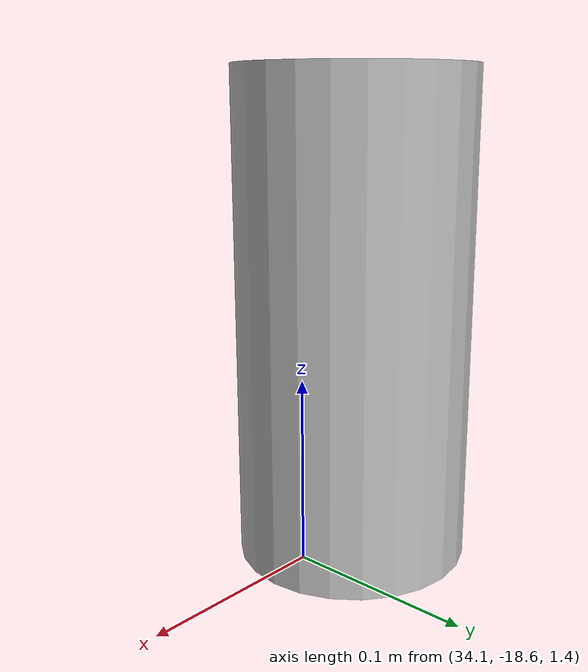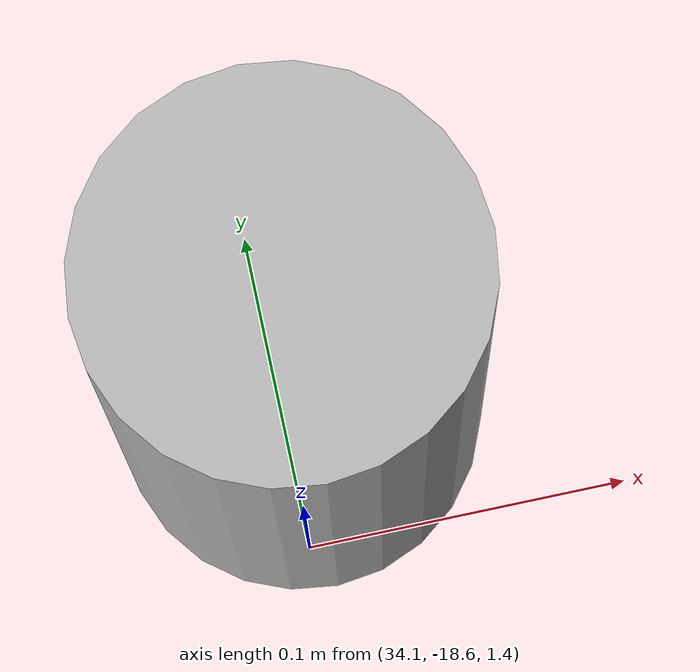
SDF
<sdf version="1.6">
 <world name="default">
  <model name="ground_plane">
   <static>1</static>
   <link name="link">
    <collision name="collision">
     <geometry><plane><normal>0 0 1</normal><size>100 100</size></plane></geometry>
     <surface>
      <contact><collide_bitmask>65535</collide_bitmask></contact>
      <friction><ode><mu>100</mu><mu2>50</mu2></ode></friction>
     </surface>
    </collision>
    <visual name="visual">
     <cast_shadows>0</cast_shadows>
     <geometry><plane><normal>0 0 1</normal><size>100 100</size></plane></geometry>
     <material>
      <script><uri>file://media/materials/scripts/gazebo.material</uri><name>Gazebo/Grey</name></script>
     </material>
    </visual>
   </link>
  </model>
  <model name="beer">
   <link name="link">
    <pose>0 0 0.115 0 -0 0</pose>
    <inertial>
     <mass>0.39</mass>
     <inertia><ixx>0.00058</ixx><ixy>0</ixy><ixz>0</ixz><iyy>0.00058</iyy><iyz>0</iyz><izz>0.00019</izz></inertia>
    </inertial>
    <collision name="collision">
     <geometry><cylinder><radius>0.055</radius><length>0.23</length></cylinder></geometry>
    </collision>
    <visual name="visual">
     <geometry><cylinder><radius>0.055</radius><length>0.23</length></cylinder></geometry>
     <material>
      <script>
       <uri>model://beer/materials/scripts</uri>
       <uri>model://beer/materials/textures</uri>
       <name>Beer/Diffuse</name>
      </script>
     </material>
    </visual>
   </link>
   <pose>34.1059 -18.5612 1.42562 5e-06 2.5e-05 -1.4e-05</pose>
  </model>
 </world>
</sdf>
